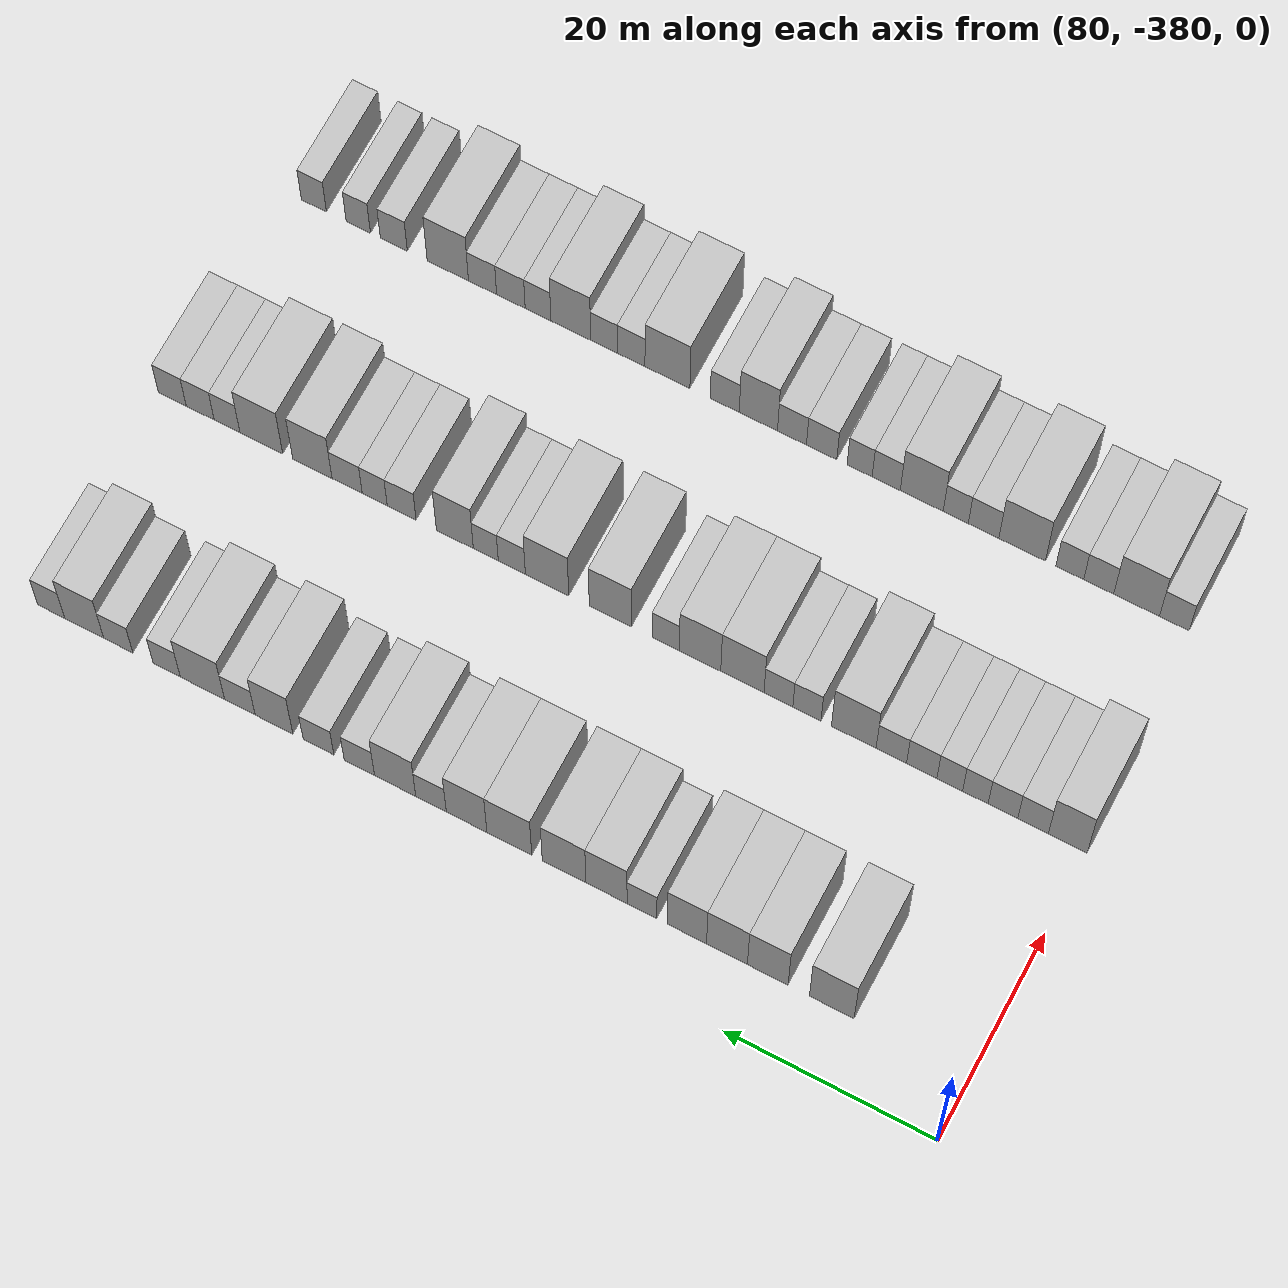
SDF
<sdf version="1.6">
 <world name="default">
  <model name="building_569">
   <static>1</static>
   <pose>91.0000 -367.0969 0 0.000000 0.000000 0.000000</pose>
   <link name="link">
    <pose>0 0 4.50 0 0 0</pose>
    <collision name="collision"><geometry><box><size>10.0000 4.1694 9.0000</size></box></geometry></collision>
    <visual name="visual">
     <cast_shadows>0</cast_shadows>
     <geometry><box><size>10.0000 4.1694 9.0000</size></box></geometry>
     <material>
      <script>
       <uri>model://HANNAS_wall/materials/scripts</uri>
       <uri>model://HANNAS_wall/materials/textures</uri>
       <name>vrc/HANNAS_wall</name>
      </script>
     </material>
    </visual>
   </link>
  </model>
  <model name="building_570">
   <static>1</static>
   <pose>91.0000 -361.1070 0 0.000000 0.000000 0.000000</pose>
   <link name="link">
    <pose>0 0 4.50 0 0 0</pose>
    <collision name="collision"><geometry><box><size>10.0000 3.8105 9.0000</size></box></geometry></collision>
    <visual name="visual">
     <cast_shadows>0</cast_shadows>
     <geometry><box><size>10.0000 3.8105 9.0000</size></box></geometry>
     <material>
      <script>
       <uri>model://HANNAS_wall/materials/scripts</uri>
       <uri>model://HANNAS_wall/materials/textures</uri>
       <name>vrc/HANNAS_wall</name>
      </script>
     </material>
    </visual>
   </link>
  </model>
  <model name="building_571">
   <static>1</static>
   <pose>91.0000 -357.2801 0 0.000000 0.000000 0.000000</pose>
   <link name="link">
    <pose>0 0 4.50 0 0 0</pose>
    <collision name="collision"><geometry><box><size>10.0000 3.8433 9.0000</size></box></geometry></collision>
    <visual name="visual">
     <cast_shadows>0</cast_shadows>
     <geometry><box><size>10.0000 3.8433 9.0000</size></box></geometry>
     <material>
      <script>
       <uri>model://HANNAS_wall/materials/scripts</uri>
       <uri>model://HANNAS_wall/materials/textures</uri>
       <name>vrc/HANNAS_wall</name>
      </script>
     </material>
    </visual>
   </link>
  </model>
  <model name="building_572">
   <static>1</static>
   <pose>91.0000 -353.5101 0 0.000000 0.000000 0.000000</pose>
   <link name="link">
    <pose>0 0 4.50 0 0 0</pose>
    <collision name="collision"><geometry><box><size>10.0000 3.6966 9.0000</size></box></geometry></collision>
    <visual name="visual">
     <cast_shadows>0</cast_shadows>
     <geometry><box><size>10.0000 3.6966 9.0000</size></box></geometry>
     <material>
      <script>
       <uri>model://HANNAS_wall/materials/scripts</uri>
       <uri>model://HANNAS_wall/materials/textures</uri>
       <name>vrc/HANNAS_wall</name>
      </script>
     </material>
    </visual>
   </link>
  </model>
  <model name="building_573">
   <static>1</static>
   <pose>91.0000 -349.2565 0 0.000000 0.000000 0.000000</pose>
   <link name="link">
    <pose>0 0 3.00 0 0 0</pose>
    <collision name="collision"><geometry><box><size>10.0000 2.8105 6.0000</size></box></geometry></collision>
    <visual name="visual">
     <cast_shadows>0</cast_shadows>
     <geometry><box><size>10.0000 2.8105 6.0000</size></box></geometry>
     <material>
      <script>
       <uri>model://HANNAS_wall/materials/scripts</uri>
       <uri>model://HANNAS_wall/materials/textures</uri>
       <name>vrc/HANNAS_wall</name>
      </script>
     </material>
    </visual>
   </link>
  </model>
  <model name="building_574">
   <static>1</static>
   <pose>91.0000 -345.8976 0 0.000000 0.000000 0.000000</pose>
   <link name="link">
    <pose>0 0 4.50 0 0 0</pose>
    <collision name="collision"><geometry><box><size>10.0000 3.9073 9.0000</size></box></geometry></collision>
    <visual name="visual">
     <cast_shadows>0</cast_shadows>
     <geometry><box><size>10.0000 3.9073 9.0000</size></box></geometry>
     <material>
      <script>
       <uri>model://HANNAS_wall/materials/scripts</uri>
       <uri>model://HANNAS_wall/materials/textures</uri>
       <name>vrc/HANNAS_wall</name>
      </script>
     </material>
    </visual>
   </link>
  </model>
  <model name="building_575">
   <static>1</static>
   <pose>91.0000 -341.8642 0 0.000000 0.000000 0.000000</pose>
   <link name="link">
    <pose>0 0 4.50 0 0 0</pose>
    <collision name="collision"><geometry><box><size>10.0000 4.1595 9.0000</size></box></geometry></collision>
    <visual name="visual">
     <cast_shadows>0</cast_shadows>
     <geometry><box><size>10.0000 4.1595 9.0000</size></box></geometry>
     <material>
      <script>
       <uri>model://HANNAS_wall/materials/scripts</uri>
       <uri>model://HANNAS_wall/materials/textures</uri>
       <name>vrc/HANNAS_wall</name>
      </script>
     </material>
    </visual>
   </link>
  </model>
  <model name="building_576">
   <static>1</static>
   <pose>91.0000 -336.6353 0 0.000000 0.000000 0.000000</pose>
   <link name="link">
    <pose>0 0 4.50 0 0 0</pose>
    <collision name="collision"><geometry><box><size>10.0000 4.2985 9.0000</size></box></geometry></collision>
    <visual name="visual">
     <cast_shadows>0</cast_shadows>
     <geometry><box><size>10.0000 4.2985 9.0000</size></box></geometry>
     <material>
      <script>
       <uri>model://HANNAS_wall/materials/scripts</uri>
       <uri>model://HANNAS_wall/materials/textures</uri>
       <name>vrc/HANNAS_wall</name>
      </script>
     </material>
    </visual>
   </link>
  </model>
  <model name="building_577">
   <static>1</static>
   <pose>91.0000 -332.5412 0 0.000000 0.000000 0.000000</pose>
   <link name="link">
    <pose>0 0 4.50 0 0 0</pose>
    <collision name="collision"><geometry><box><size>10.0000 3.8897 9.0000</size></box></geometry></collision>
    <visual name="visual">
     <cast_shadows>0</cast_shadows>
     <geometry><box><size>10.0000 3.8897 9.0000</size></box></geometry>
     <material>
      <script>
       <uri>model://HANNAS_wall/materials/scripts</uri>
       <uri>model://HANNAS_wall/materials/textures</uri>
       <name>vrc/HANNAS_wall</name>
      </script>
     </material>
    </visual>
   </link>
  </model>
  <model name="building_578">
   <static>1</static>
   <pose>91.0000 -329.1259 0 0.000000 0.000000 0.000000</pose>
   <link name="link">
    <pose>0 0 3.00 0 0 0</pose>
    <collision name="collision"><geometry><box><size>10.0000 2.9410 6.0000</size></box></geometry></collision>
    <visual name="visual">
     <cast_shadows>0</cast_shadows>
     <geometry><box><size>10.0000 2.9410 6.0000</size></box></geometry>
     <material>
      <script>
       <uri>model://HANNAS_wall/materials/scripts</uri>
       <uri>model://HANNAS_wall/materials/textures</uri>
       <name>vrc/HANNAS_wall</name>
      </script>
     </material>
    </visual>
   </link>
  </model>
  <model name="building_579">
   <static>1</static>
   <pose>91.0000 -325.6616 0 0.000000 0.000000 0.000000</pose>
   <link name="link">
    <pose>0 0 4.50 0 0 0</pose>
    <collision name="collision"><geometry><box><size>10.0000 3.9875 9.0000</size></box></geometry></collision>
    <visual name="visual">
     <cast_shadows>0</cast_shadows>
     <geometry><box><size>10.0000 3.9875 9.0000</size></box></geometry>
     <material>
      <script>
       <uri>model://HANNAS_wall/materials/scripts</uri>
       <uri>model://HANNAS_wall/materials/textures</uri>
       <name>vrc/HANNAS_wall</name>
      </script>
     </material>
    </visual>
   </link>
  </model>
  <model name="building_580">
   <static>1</static>
   <pose>91.0000 -322.2010 0 0.000000 0.000000 0.000000</pose>
   <link name="link">
    <pose>0 0 3.00 0 0 0</pose>
    <collision name="collision"><geometry><box><size>10.0000 2.9337 6.0000</size></box></geometry></collision>
    <visual name="visual">
     <cast_shadows>0</cast_shadows>
     <geometry><box><size>10.0000 2.9337 6.0000</size></box></geometry>
     <material>
      <script>
       <uri>model://HANNAS_wall/materials/scripts</uri>
       <uri>model://HANNAS_wall/materials/textures</uri>
       <name>vrc/HANNAS_wall</name>
      </script>
     </material>
    </visual>
   </link>
  </model>
  <model name="building_581">
   <static>1</static>
   <pose>91.0000 -318.2426 0 0.000000 0.000000 0.000000</pose>
   <link name="link">
    <pose>0 0 3.00 0 0 0</pose>
    <collision name="collision"><geometry><box><size>10.0000 2.9831 6.0000</size></box></geometry></collision>
    <visual name="visual">
     <cast_shadows>0</cast_shadows>
     <geometry><box><size>10.0000 2.9831 6.0000</size></box></geometry>
     <material>
      <script>
       <uri>model://HANNAS_wall/materials/scripts</uri>
       <uri>model://HANNAS_wall/materials/textures</uri>
       <name>vrc/HANNAS_wall</name>
      </script>
     </material>
    </visual>
   </link>
  </model>
  <model name="building_582">
   <static>1</static>
   <pose>91.0000 -313.9109 0 0.000000 0.000000 0.000000</pose>
   <link name="link">
    <pose>0 0 4.50 0 0 0</pose>
    <collision name="collision"><geometry><box><size>10.0000 3.6802 9.0000</size></box></geometry></collision>
    <visual name="visual">
     <cast_shadows>0</cast_shadows>
     <geometry><box><size>10.0000 3.6802 9.0000</size></box></geometry>
     <material>
      <script>
       <uri>model://HANNAS_wall/materials/scripts</uri>
       <uri>model://HANNAS_wall/materials/textures</uri>
       <name>vrc/HANNAS_wall</name>
      </script>
     </material>
    </visual>
   </link>
  </model>
  <model name="building_583">
   <static>1</static>
   <pose>91.0000 -310.5737 0 0.000000 0.000000 0.000000</pose>
   <link name="link">
    <pose>0 0 3.00 0 0 0</pose>
    <collision name="collision"><geometry><box><size>10.0000 2.9942 6.0000</size></box></geometry></collision>
    <visual name="visual">
     <cast_shadows>0</cast_shadows>
     <geometry><box><size>10.0000 2.9942 6.0000</size></box></geometry>
     <material>
      <script>
       <uri>model://HANNAS_wall/materials/scripts</uri>
       <uri>model://HANNAS_wall/materials/textures</uri>
       <name>vrc/HANNAS_wall</name>
      </script>
     </material>
    </visual>
   </link>
  </model>
  <model name="building_584">
   <static>1</static>
   <pose>91.0000 -306.9051 0 0.000000 0.000000 0.000000</pose>
   <link name="link">
    <pose>0 0 4.50 0 0 0</pose>
    <collision name="collision"><geometry><box><size>10.0000 4.3431 9.0000</size></box></geometry></collision>
    <visual name="visual">
     <cast_shadows>0</cast_shadows>
     <geometry><box><size>10.0000 4.3431 9.0000</size></box></geometry>
     <material>
      <script>
       <uri>model://HANNAS_wall/materials/scripts</uri>
       <uri>model://HANNAS_wall/materials/textures</uri>
       <name>vrc/HANNAS_wall</name>
      </script>
     </material>
    </visual>
   </link>
  </model>
  <model name="building_585">
   <static>1</static>
   <pose>91.0000 -303.3999 0 0.000000 0.000000 0.000000</pose>
   <link name="link">
    <pose>0 0 3.00 0 0 0</pose>
    <collision name="collision"><geometry><box><size>10.0000 2.6673 6.0000</size></box></geometry></collision>
    <visual name="visual">
     <cast_shadows>0</cast_shadows>
     <geometry><box><size>10.0000 2.6673 6.0000</size></box></geometry>
     <material>
      <script>
       <uri>model://HANNAS_wall/materials/scripts</uri>
       <uri>model://HANNAS_wall/materials/textures</uri>
       <name>vrc/HANNAS_wall</name>
      </script>
     </material>
    </visual>
   </link>
  </model>
  <model name="building_586">
   <static>1</static>
   <pose>91.0000 -298.6245 0 0.000000 0.000000 0.000000</pose>
   <link name="link">
    <pose>0 0 3.00 0 0 0</pose>
    <collision name="collision"><geometry><box><size>10.0000 2.8835 6.0000</size></box></geometry></collision>
    <visual name="visual">
     <cast_shadows>0</cast_shadows>
     <geometry><box><size>10.0000 2.8835 6.0000</size></box></geometry>
     <material>
      <script>
       <uri>model://HANNAS_wall/materials/scripts</uri>
       <uri>model://HANNAS_wall/materials/textures</uri>
       <name>vrc/HANNAS_wall</name>
      </script>
     </material>
    </visual>
   </link>
  </model>
  <model name="building_587">
   <static>1</static>
   <pose>91.0000 -295.2579 0 0.000000 0.000000 0.000000</pose>
   <link name="link">
    <pose>0 0 4.50 0 0 0</pose>
    <collision name="collision"><geometry><box><size>10.0000 3.8496 9.0000</size></box></geometry></collision>
    <visual name="visual">
     <cast_shadows>0</cast_shadows>
     <geometry><box><size>10.0000 3.8496 9.0000</size></box></geometry>
     <material>
      <script>
       <uri>model://HANNAS_wall/materials/scripts</uri>
       <uri>model://HANNAS_wall/materials/textures</uri>
       <name>vrc/HANNAS_wall</name>
      </script>
     </material>
    </visual>
   </link>
  </model>
  <model name="building_588">
   <static>1</static>
   <pose>91.0000 -291.9937 0 0.000000 0.000000 0.000000</pose>
   <link name="link">
    <pose>0 0 3.00 0 0 0</pose>
    <collision name="collision"><geometry><box><size>10.0000 2.6790 6.0000</size></box></geometry></collision>
    <visual name="visual">
     <cast_shadows>0</cast_shadows>
     <geometry><box><size>10.0000 2.6790 6.0000</size></box></geometry>
     <material>
      <script>
       <uri>model://HANNAS_wall/materials/scripts</uri>
       <uri>model://HANNAS_wall/materials/textures</uri>
       <name>vrc/HANNAS_wall</name>
      </script>
     </material>
    </visual>
   </link>
  </model>
  <model name="building_748">
   <static>1</static>
   <pose>113.0000 -378.1793 0 0.000000 0.000000 0.000000</pose>
   <link name="link">
    <pose>0 0 4.50 0 0 0</pose>
    <collision name="collision"><geometry><box><size>10.0000 3.6413 9.0000</size></box></geometry></collision>
    <visual name="visual">
     <cast_shadows>0</cast_shadows>
     <geometry><box><size>10.0000 3.6413 9.0000</size></box></geometry>
     <material>
      <script>
       <uri>model://HANNAS_wall/materials/scripts</uri>
       <uri>model://HANNAS_wall/materials/textures</uri>
       <name>vrc/HANNAS_wall</name>
      </script>
     </material>
    </visual>
   </link>
  </model>
  <model name="building_749">
   <static>1</static>
   <pose>113.0000 -374.9219 0 0.000000 0.000000 0.000000</pose>
   <link name="link">
    <pose>0 0 3.00 0 0 0</pose>
    <collision name="collision"><geometry><box><size>10.0000 2.8735 6.0000</size></box></geometry></collision>
    <visual name="visual">
     <cast_shadows>0</cast_shadows>
     <geometry><box><size>10.0000 2.8735 6.0000</size></box></geometry>
     <material>
      <script>
       <uri>model://HANNAS_wall/materials/scripts</uri>
       <uri>model://HANNAS_wall/materials/textures</uri>
       <name>vrc/HANNAS_wall</name>
      </script>
     </material>
    </visual>
   </link>
  </model>
  <model name="building_750">
   <static>1</static>
   <pose>113.0000 -372.0901 0 0.000000 0.000000 0.000000</pose>
   <link name="link">
    <pose>0 0 3.00 0 0 0</pose>
    <collision name="collision"><geometry><box><size>10.0000 2.7900 6.0000</size></box></geometry></collision>
    <visual name="visual">
     <cast_shadows>0</cast_shadows>
     <geometry><box><size>10.0000 2.7900 6.0000</size></box></geometry>
     <material>
      <script>
       <uri>model://HANNAS_wall/materials/scripts</uri>
       <uri>model://HANNAS_wall/materials/textures</uri>
       <name>vrc/HANNAS_wall</name>
      </script>
     </material>
    </visual>
   </link>
  </model>
  <model name="building_751">
   <static>1</static>
   <pose>113.0000 -369.4898 0 0.000000 0.000000 0.000000</pose>
   <link name="link">
    <pose>0 0 3.00 0 0 0</pose>
    <collision name="collision"><geometry><box><size>10.0000 2.4107 6.0000</size></box></geometry></collision>
    <visual name="visual">
     <cast_shadows>0</cast_shadows>
     <geometry><box><size>10.0000 2.4107 6.0000</size></box></geometry>
     <material>
      <script>
       <uri>model://HANNAS_wall/materials/scripts</uri>
       <uri>model://HANNAS_wall/materials/textures</uri>
       <name>vrc/HANNAS_wall</name>
      </script>
     </material>
    </visual>
   </link>
  </model>
  <model name="building_752">
   <static>1</static>
   <pose>113.0000 -367.0705 0 0.000000 0.000000 0.000000</pose>
   <link name="link">
    <pose>0 0 3.00 0 0 0</pose>
    <collision name="collision"><geometry><box><size>10.0000 2.4279 6.0000</size></box></geometry></collision>
    <visual name="visual">
     <cast_shadows>0</cast_shadows>
     <geometry><box><size>10.0000 2.4279 6.0000</size></box></geometry>
     <material>
      <script>
       <uri>model://HANNAS_wall/materials/scripts</uri>
       <uri>model://HANNAS_wall/materials/textures</uri>
       <name>vrc/HANNAS_wall</name>
      </script>
     </material>
    </visual>
   </link>
  </model>
  <model name="building_753">
   <static>1</static>
   <pose>113.0000 -364.4181 0 0.000000 0.000000 0.000000</pose>
   <link name="link">
    <pose>0 0 3.00 0 0 0</pose>
    <collision name="collision"><geometry><box><size>10.0000 2.8770 6.0000</size></box></geometry></collision>
    <visual name="visual">
     <cast_shadows>0</cast_shadows>
     <geometry><box><size>10.0000 2.8770 6.0000</size></box></geometry>
     <material>
      <script>
       <uri>model://HANNAS_wall/materials/scripts</uri>
       <uri>model://HANNAS_wall/materials/textures</uri>
       <name>vrc/HANNAS_wall</name>
      </script>
     </material>
    </visual>
   </link>
  </model>
  <model name="building_754">
   <static>1</static>
   <pose>113.0000 -361.5354 0 0.000000 0.000000 0.000000</pose>
   <link name="link">
    <pose>0 0 3.00 0 0 0</pose>
    <collision name="collision"><geometry><box><size>10.0000 2.8883 6.0000</size></box></geometry></collision>
    <visual name="visual">
     <cast_shadows>0</cast_shadows>
     <geometry><box><size>10.0000 2.8883 6.0000</size></box></geometry>
     <material>
      <script>
       <uri>model://HANNAS_wall/materials/scripts</uri>
       <uri>model://HANNAS_wall/materials/textures</uri>
       <name>vrc/HANNAS_wall</name>
      </script>
     </material>
    </visual>
   </link>
  </model>
  <model name="building_755">
   <static>1</static>
   <pose>113.0000 -357.9671 0 0.000000 0.000000 0.000000</pose>
   <link name="link">
    <pose>0 0 4.50 0 0 0</pose>
    <collision name="collision"><geometry><box><size>10.0000 4.2483 9.0000</size></box></geometry></collision>
    <visual name="visual">
     <cast_shadows>0</cast_shadows>
     <geometry><box><size>10.0000 4.2483 9.0000</size></box></geometry>
     <material>
      <script>
       <uri>model://HANNAS_wall/materials/scripts</uri>
       <uri>model://HANNAS_wall/materials/textures</uri>
       <name>vrc/HANNAS_wall</name>
      </script>
     </material>
    </visual>
   </link>
  </model>
  <model name="building_756">
   <static>1</static>
   <pose>113.0000 -353.4993 0 0.000000 0.000000 0.000000</pose>
   <link name="link">
    <pose>0 0 3.00 0 0 0</pose>
    <collision name="collision"><geometry><box><size>10.0000 2.6874 6.0000</size></box></geometry></collision>
    <visual name="visual">
     <cast_shadows>0</cast_shadows>
     <geometry><box><size>10.0000 2.6874 6.0000</size></box></geometry>
     <material>
      <script>
       <uri>model://HANNAS_wall/materials/scripts</uri>
       <uri>model://HANNAS_wall/materials/textures</uri>
       <name>vrc/HANNAS_wall</name>
      </script>
     </material>
    </visual>
   </link>
  </model>
  <model name="building_757">
   <static>1</static>
   <pose>113.0000 -350.7759 0 0.000000 0.000000 0.000000</pose>
   <link name="link">
    <pose>0 0 3.00 0 0 0</pose>
    <collision name="collision"><geometry><box><size>10.0000 2.7592 6.0000</size></box></geometry></collision>
    <visual name="visual">
     <cast_shadows>0</cast_shadows>
     <geometry><box><size>10.0000 2.7592 6.0000</size></box></geometry>
     <material>
      <script>
       <uri>model://HANNAS_wall/materials/scripts</uri>
       <uri>model://HANNAS_wall/materials/textures</uri>
       <name>vrc/HANNAS_wall</name>
      </script>
     </material>
    </visual>
   </link>
  </model>
  <model name="building_758">
   <static>1</static>
   <pose>113.0000 -347.3155 0 0.000000 0.000000 0.000000</pose>
   <link name="link">
    <pose>0 0 4.50 0 0 0</pose>
    <collision name="collision"><geometry><box><size>10.0000 4.1616 9.0000</size></box></geometry></collision>
    <visual name="visual">
     <cast_shadows>0</cast_shadows>
     <geometry><box><size>10.0000 4.1616 9.0000</size></box></geometry>
     <material>
      <script>
       <uri>model://HANNAS_wall/materials/scripts</uri>
       <uri>model://HANNAS_wall/materials/textures</uri>
       <name>vrc/HANNAS_wall</name>
      </script>
     </material>
    </visual>
   </link>
  </model>
  <model name="building_759">
   <static>1</static>
   <pose>113.0000 -343.2371 0 0.000000 0.000000 0.000000</pose>
   <link name="link">
    <pose>0 0 4.50 0 0 0</pose>
    <collision name="collision"><geometry><box><size>10.0000 3.9953 9.0000</size></box></geometry></collision>
    <visual name="visual">
     <cast_shadows>0</cast_shadows>
     <geometry><box><size>10.0000 3.9953 9.0000</size></box></geometry>
     <material>
      <script>
       <uri>model://HANNAS_wall/materials/scripts</uri>
       <uri>model://HANNAS_wall/materials/textures</uri>
       <name>vrc/HANNAS_wall</name>
      </script>
     </material>
    </visual>
   </link>
  </model>
  <model name="building_760">
   <static>1</static>
   <pose>113.0000 -339.9262 0 0.000000 0.000000 0.000000</pose>
   <link name="link">
    <pose>0 0 3.00 0 0 0</pose>
    <collision name="collision"><geometry><box><size>10.0000 2.6266 6.0000</size></box></geometry></collision>
    <visual name="visual">
     <cast_shadows>0</cast_shadows>
     <geometry><box><size>10.0000 2.6266 6.0000</size></box></geometry>
     <material>
      <script>
       <uri>model://HANNAS_wall/materials/scripts</uri>
       <uri>model://HANNAS_wall/materials/textures</uri>
       <name>vrc/HANNAS_wall</name>
      </script>
     </material>
    </visual>
   </link>
  </model>
  <model name="building_761">
   <static>1</static>
   <pose>113.0000 -334.5702 0 0.000000 0.000000 0.000000</pose>
   <link name="link">
    <pose>0 0 4.50 0 0 0</pose>
    <collision name="collision"><geometry><box><size>10.0000 4.0854 9.0000</size></box></geometry></collision>
    <visual name="visual">
     <cast_shadows>0</cast_shadows>
     <geometry><box><size>10.0000 4.0854 9.0000</size></box></geometry>
     <material>
      <script>
       <uri>model://HANNAS_wall/materials/scripts</uri>
       <uri>model://HANNAS_wall/materials/textures</uri>
       <name>vrc/HANNAS_wall</name>
      </script>
     </material>
    </visual>
   </link>
  </model>
  <model name="building_762">
   <static>1</static>
   <pose>113.0000 -328.4129 0 0.000000 0.000000 0.000000</pose>
   <link name="link">
    <pose>0 0 4.50 0 0 0</pose>
    <collision name="collision"><geometry><box><size>10.0000 4.2292 9.0000</size></box></geometry></collision>
    <visual name="visual">
     <cast_shadows>0</cast_shadows>
     <geometry><box><size>10.0000 4.2292 9.0000</size></box></geometry>
     <material>
      <script>
       <uri>model://HANNAS_wall/materials/scripts</uri>
       <uri>model://HANNAS_wall/materials/textures</uri>
       <name>vrc/HANNAS_wall</name>
      </script>
     </material>
    </visual>
   </link>
  </model>
  <model name="building_763">
   <static>1</static>
   <pose>113.0000 -324.9726 0 0.000000 0.000000 0.000000</pose>
   <link name="link">
    <pose>0 0 3.00 0 0 0</pose>
    <collision name="collision"><geometry><box><size>10.0000 2.6514 6.0000</size></box></geometry></collision>
    <visual name="visual">
     <cast_shadows>0</cast_shadows>
     <geometry><box><size>10.0000 2.6514 6.0000</size></box></geometry>
     <material>
      <script>
       <uri>model://HANNAS_wall/materials/scripts</uri>
       <uri>model://HANNAS_wall/materials/textures</uri>
       <name>vrc/HANNAS_wall</name>
      </script>
     </material>
    </visual>
   </link>
  </model>
  <model name="building_764">
   <static>1</static>
   <pose>113.0000 -322.4252 0 0.000000 0.000000 0.000000</pose>
   <link name="link">
    <pose>0 0 3.00 0 0 0</pose>
    <collision name="collision"><geometry><box><size>10.0000 2.4434 6.0000</size></box></geometry></collision>
    <visual name="visual">
     <cast_shadows>0</cast_shadows>
     <geometry><box><size>10.0000 2.4434 6.0000</size></box></geometry>
     <material>
      <script>
       <uri>model://HANNAS_wall/materials/scripts</uri>
       <uri>model://HANNAS_wall/materials/textures</uri>
       <name>vrc/HANNAS_wall</name>
      </script>
     </material>
    </visual>
   </link>
  </model>
  <model name="building_765">
   <static>1</static>
   <pose>113.0000 -319.3925 0 0.000000 0.000000 0.000000</pose>
   <link name="link">
    <pose>0 0 4.50 0 0 0</pose>
    <collision name="collision"><geometry><box><size>10.0000 3.6220 9.0000</size></box></geometry></collision>
    <visual name="visual">
     <cast_shadows>0</cast_shadows>
     <geometry><box><size>10.0000 3.6220 9.0000</size></box></geometry>
     <material>
      <script>
       <uri>model://HANNAS_wall/materials/scripts</uri>
       <uri>model://HANNAS_wall/materials/textures</uri>
       <name>vrc/HANNAS_wall</name>
      </script>
     </material>
    </visual>
   </link>
  </model>
  <model name="building_766">
   <static>1</static>
   <pose>113.0000 -314.1592 0 0.000000 0.000000 0.000000</pose>
   <link name="link">
    <pose>0 0 3.00 0 0 0</pose>
    <collision name="collision"><geometry><box><size>10.0000 2.8445 6.0000</size></box></geometry></collision>
    <visual name="visual">
     <cast_shadows>0</cast_shadows>
     <geometry><box><size>10.0000 2.8445 6.0000</size></box></geometry>
     <material>
      <script>
       <uri>model://HANNAS_wall/materials/scripts</uri>
       <uri>model://HANNAS_wall/materials/textures</uri>
       <name>vrc/HANNAS_wall</name>
      </script>
     </material>
    </visual>
   </link>
  </model>
  <model name="building_767">
   <static>1</static>
   <pose>113.0000 -311.4996 0 0.000000 0.000000 0.000000</pose>
   <link name="link">
    <pose>0 0 3.00 0 0 0</pose>
    <collision name="collision"><geometry><box><size>10.0000 2.4747 6.0000</size></box></geometry></collision>
    <visual name="visual">
     <cast_shadows>0</cast_shadows>
     <geometry><box><size>10.0000 2.4747 6.0000</size></box></geometry>
     <material>
      <script>
       <uri>model://HANNAS_wall/materials/scripts</uri>
       <uri>model://HANNAS_wall/materials/textures</uri>
       <name>vrc/HANNAS_wall</name>
      </script>
     </material>
    </visual>
   </link>
  </model>
  <model name="building_768">
   <static>1</static>
   <pose>113.0000 -308.7665 0 0.000000 0.000000 0.000000</pose>
   <link name="link">
    <pose>0 0 3.00 0 0 0</pose>
    <collision name="collision"><geometry><box><size>10.0000 2.9915 6.0000</size></box></geometry></collision>
    <visual name="visual">
     <cast_shadows>0</cast_shadows>
     <geometry><box><size>10.0000 2.9915 6.0000</size></box></geometry>
     <material>
      <script>
       <uri>model://HANNAS_wall/materials/scripts</uri>
       <uri>model://HANNAS_wall/materials/textures</uri>
       <name>vrc/HANNAS_wall</name>
      </script>
     </material>
    </visual>
   </link>
  </model>
  <model name="building_769">
   <static>1</static>
   <pose>113.0000 -305.3181 0 0.000000 0.000000 0.000000</pose>
   <link name="link">
    <pose>0 0 4.50 0 0 0</pose>
    <collision name="collision"><geometry><box><size>10.0000 3.9053 9.0000</size></box></geometry></collision>
    <visual name="visual">
     <cast_shadows>0</cast_shadows>
     <geometry><box><size>10.0000 3.9053 9.0000</size></box></geometry>
     <material>
      <script>
       <uri>model://HANNAS_wall/materials/scripts</uri>
       <uri>model://HANNAS_wall/materials/textures</uri>
       <name>vrc/HANNAS_wall</name>
      </script>
     </material>
    </visual>
   </link>
  </model>
  <model name="building_770">
   <static>1</static>
   <pose>113.0000 -300.2298 0 0.000000 0.000000 0.000000</pose>
   <link name="link">
    <pose>0 0 4.50 0 0 0</pose>
    <collision name="collision"><geometry><box><size>10.0000 4.2712 9.0000</size></box></geometry></collision>
    <visual name="visual">
     <cast_shadows>0</cast_shadows>
     <geometry><box><size>10.0000 4.2712 9.0000</size></box></geometry>
     <material>
      <script>
       <uri>model://HANNAS_wall/materials/scripts</uri>
       <uri>model://HANNAS_wall/materials/textures</uri>
       <name>vrc/HANNAS_wall</name>
      </script>
     </material>
    </visual>
   </link>
  </model>
  <model name="building_771">
   <static>1</static>
   <pose>113.0000 -296.8049 0 0.000000 0.000000 0.000000</pose>
   <link name="link">
    <pose>0 0 3.00 0 0 0</pose>
    <collision name="collision"><geometry><box><size>10.0000 2.5785 6.0000</size></box></geometry></collision>
    <visual name="visual">
     <cast_shadows>0</cast_shadows>
     <geometry><box><size>10.0000 2.5785 6.0000</size></box></geometry>
     <material>
      <script>
       <uri>model://HANNAS_wall/materials/scripts</uri>
       <uri>model://HANNAS_wall/materials/textures</uri>
       <name>vrc/HANNAS_wall</name>
      </script>
     </material>
    </visual>
   </link>
  </model>
  <model name="building_772">
   <static>1</static>
   <pose>113.0000 -294.1156 0 0.000000 0.000000 0.000000</pose>
   <link name="link">
    <pose>0 0 3.00 0 0 0</pose>
    <collision name="collision"><geometry><box><size>10.0000 2.8002 6.0000</size></box></geometry></collision>
    <visual name="visual">
     <cast_shadows>0</cast_shadows>
     <geometry><box><size>10.0000 2.8002 6.0000</size></box></geometry>
     <material>
      <script>
       <uri>model://HANNAS_wall/materials/scripts</uri>
       <uri>model://HANNAS_wall/materials/textures</uri>
       <name>vrc/HANNAS_wall</name>
      </script>
     </material>
    </visual>
   </link>
  </model>
  <model name="building_773">
   <static>1</static>
   <pose>113.0000 -291.3076 0 0.000000 0.000000 0.000000</pose>
   <link name="link">
    <pose>0 0 3.00 0 0 0</pose>
    <collision name="collision"><geometry><box><size>10.0000 2.8159 6.0000</size></box></geometry></collision>
    <visual name="visual">
     <cast_shadows>0</cast_shadows>
     <geometry><box><size>10.0000 2.8159 6.0000</size></box></geometry>
     <material>
      <script>
       <uri>model://HANNAS_wall/materials/scripts</uri>
       <uri>model://HANNAS_wall/materials/textures</uri>
       <name>vrc/HANNAS_wall</name>
      </script>
     </material>
    </visual>
   </link>
  </model>
  <model name="building_944">
   <static>1</static>
   <pose>135.0000 -377.5845 0 0.000000 0.000000 0.000000</pose>
   <link name="link">
    <pose>0 0 3.00 0 0 0</pose>
    <collision name="collision"><geometry><box><size>10.0000 2.8309 6.0000</size></box></geometry></collision>
    <visual name="visual">
     <cast_shadows>0</cast_shadows>
     <geometry><box><size>10.0000 2.8309 6.0000</size></box></geometry>
     <material>
      <script>
       <uri>model://HANNAS_wall/materials/scripts</uri>
       <uri>model://HANNAS_wall/materials/textures</uri>
       <name>vrc/HANNAS_wall</name>
      </script>
     </material>
    </visual>
   </link>
  </model>
  <model name="building_945">
   <static>1</static>
   <pose>135.0000 -373.9913 0 0.000000 0.000000 0.000000</pose>
   <link name="link">
    <pose>0 0 4.50 0 0 0</pose>
    <collision name="collision"><geometry><box><size>10.0000 4.3555 9.0000</size></box></geometry></collision>
    <visual name="visual">
     <cast_shadows>0</cast_shadows>
     <geometry><box><size>10.0000 4.3555 9.0000</size></box></geometry>
     <material>
      <script>
       <uri>model://HANNAS_wall/materials/scripts</uri>
       <uri>model://HANNAS_wall/materials/textures</uri>
       <name>vrc/HANNAS_wall</name>
      </script>
     </material>
    </visual>
   </link>
  </model>
  <model name="building_946">
   <static>1</static>
   <pose>135.0000 -370.3814 0 0.000000 0.000000 0.000000</pose>
   <link name="link">
    <pose>0 0 3.00 0 0 0</pose>
    <collision name="collision"><geometry><box><size>10.0000 2.8643 6.0000</size></box></geometry></collision>
    <visual name="visual">
     <cast_shadows>0</cast_shadows>
     <geometry><box><size>10.0000 2.8643 6.0000</size></box></geometry>
     <material>
      <script>
       <uri>model://HANNAS_wall/materials/scripts</uri>
       <uri>model://HANNAS_wall/materials/textures</uri>
       <name>vrc/HANNAS_wall</name>
      </script>
     </material>
    </visual>
   </link>
  </model>
  <model name="building_947">
   <static>1</static>
   <pose>135.0000 -367.6221 0 0.000000 0.000000 0.000000</pose>
   <link name="link">
    <pose>0 0 3.00 0 0 0</pose>
    <collision name="collision"><geometry><box><size>10.0000 2.6543 6.0000</size></box></geometry></collision>
    <visual name="visual">
     <cast_shadows>0</cast_shadows>
     <geometry><box><size>10.0000 2.6543 6.0000</size></box></geometry>
     <material>
      <script>
       <uri>model://HANNAS_wall/materials/scripts</uri>
       <uri>model://HANNAS_wall/materials/textures</uri>
       <name>vrc/HANNAS_wall</name>
      </script>
     </material>
    </visual>
   </link>
  </model>
  <model name="building_948">
   <static>1</static>
   <pose>135.0000 -363.0604 0 0.000000 0.000000 0.000000</pose>
   <link name="link">
    <pose>0 0 4.50 0 0 0</pose>
    <collision name="collision"><geometry><box><size>10.0000 4.4692 9.0000</size></box></geometry></collision>
    <visual name="visual">
     <cast_shadows>0</cast_shadows>
     <geometry><box><size>10.0000 4.4692 9.0000</size></box></geometry>
     <material>
      <script>
       <uri>model://HANNAS_wall/materials/scripts</uri>
       <uri>model://HANNAS_wall/materials/textures</uri>
       <name>vrc/HANNAS_wall</name>
      </script>
     </material>
    </visual>
   </link>
  </model>
  <model name="building_949">
   <static>1</static>
   <pose>135.0000 -359.3538 0 0.000000 0.000000 0.000000</pose>
   <link name="link">
    <pose>0 0 3.00 0 0 0</pose>
    <collision name="collision"><geometry><box><size>10.0000 2.9439 6.0000</size></box></geometry></collision>
    <visual name="visual">
     <cast_shadows>0</cast_shadows>
     <geometry><box><size>10.0000 2.9439 6.0000</size></box></geometry>
     <material>
      <script>
       <uri>model://HANNAS_wall/materials/scripts</uri>
       <uri>model://HANNAS_wall/materials/textures</uri>
       <name>vrc/HANNAS_wall</name>
      </script>
     </material>
    </visual>
   </link>
  </model>
  <model name="building_950">
   <static>1</static>
   <pose>135.0000 -356.6701 0 0.000000 0.000000 0.000000</pose>
   <link name="link">
    <pose>0 0 3.00 0 0 0</pose>
    <collision name="collision"><geometry><box><size>10.0000 2.4234 6.0000</size></box></geometry></collision>
    <visual name="visual">
     <cast_shadows>0</cast_shadows>
     <geometry><box><size>10.0000 2.4234 6.0000</size></box></geometry>
     <material>
      <script>
       <uri>model://HANNAS_wall/materials/scripts</uri>
       <uri>model://HANNAS_wall/materials/textures</uri>
       <name>vrc/HANNAS_wall</name>
      </script>
     </material>
    </visual>
   </link>
  </model>
  <model name="building_951">
   <static>1</static>
   <pose>135.0000 -353.3797 0 0.000000 0.000000 0.000000</pose>
   <link name="link">
    <pose>0 0 4.50 0 0 0</pose>
    <collision name="collision"><geometry><box><size>10.0000 4.1574 9.0000</size></box></geometry></collision>
    <visual name="visual">
     <cast_shadows>0</cast_shadows>
     <geometry><box><size>10.0000 4.1574 9.0000</size></box></geometry>
     <material>
      <script>
       <uri>model://HANNAS_wall/materials/scripts</uri>
       <uri>model://HANNAS_wall/materials/textures</uri>
       <name>vrc/HANNAS_wall</name>
      </script>
     </material>
    </visual>
   </link>
  </model>
  <model name="building_952">
   <static>1</static>
   <pose>135.0000 -349.9372 0 0.000000 0.000000 0.000000</pose>
   <link name="link">
    <pose>0 0 3.00 0 0 0</pose>
    <collision name="collision"><geometry><box><size>10.0000 2.7278 6.0000</size></box></geometry></collision>
    <visual name="visual">
     <cast_shadows>0</cast_shadows>
     <geometry><box><size>10.0000 2.7278 6.0000</size></box></geometry>
     <material>
      <script>
       <uri>model://HANNAS_wall/materials/scripts</uri>
       <uri>model://HANNAS_wall/materials/textures</uri>
       <name>vrc/HANNAS_wall</name>
      </script>
     </material>
    </visual>
   </link>
  </model>
  <model name="building_953">
   <static>1</static>
   <pose>135.0000 -347.3542 0 0.000000 0.000000 0.000000</pose>
   <link name="link">
    <pose>0 0 3.00 0 0 0</pose>
    <collision name="collision"><geometry><box><size>10.0000 2.4381 6.0000</size></box></geometry></collision>
    <visual name="visual">
     <cast_shadows>0</cast_shadows>
     <geometry><box><size>10.0000 2.4381 6.0000</size></box></geometry>
     <material>
      <script>
       <uri>model://HANNAS_wall/materials/scripts</uri>
       <uri>model://HANNAS_wall/materials/textures</uri>
       <name>vrc/HANNAS_wall</name>
      </script>
     </material>
    </visual>
   </link>
  </model>
  <model name="building_954">
   <static>1</static>
   <pose>135.0000 -343.6555 0 0.000000 0.000000 0.000000</pose>
   <link name="link">
    <pose>0 0 3.00 0 0 0</pose>
    <collision name="collision"><geometry><box><size>10.0000 2.9593 6.0000</size></box></geometry></collision>
    <visual name="visual">
     <cast_shadows>0</cast_shadows>
     <geometry><box><size>10.0000 2.9593 6.0000</size></box></geometry>
     <material>
      <script>
       <uri>model://HANNAS_wall/materials/scripts</uri>
       <uri>model://HANNAS_wall/materials/textures</uri>
       <name>vrc/HANNAS_wall</name>
      </script>
     </material>
    </visual>
   </link>
  </model>
  <model name="building_955">
   <static>1</static>
   <pose>135.0000 -340.7587 0 0.000000 0.000000 0.000000</pose>
   <link name="link">
    <pose>0 0 3.00 0 0 0</pose>
    <collision name="collision"><geometry><box><size>10.0000 2.8344 6.0000</size></box></geometry></collision>
    <visual name="visual">
     <cast_shadows>0</cast_shadows>
     <geometry><box><size>10.0000 2.8344 6.0000</size></box></geometry>
     <material>
      <script>
       <uri>model://HANNAS_wall/materials/scripts</uri>
       <uri>model://HANNAS_wall/materials/textures</uri>
       <name>vrc/HANNAS_wall</name>
      </script>
     </material>
    </visual>
   </link>
  </model>
  <model name="building_956">
   <static>1</static>
   <pose>135.0000 -337.4659 0 0.000000 0.000000 0.000000</pose>
   <link name="link">
    <pose>0 0 4.50 0 0 0</pose>
    <collision name="collision"><geometry><box><size>10.0000 3.7513 9.0000</size></box></geometry></collision>
    <visual name="visual">
     <cast_shadows>0</cast_shadows>
     <geometry><box><size>10.0000 3.7513 9.0000</size></box></geometry>
     <material>
      <script>
       <uri>model://HANNAS_wall/materials/scripts</uri>
       <uri>model://HANNAS_wall/materials/textures</uri>
       <name>vrc/HANNAS_wall</name>
      </script>
     </material>
    </visual>
   </link>
  </model>
  <model name="building_957">
   <static>1</static>
   <pose>135.0000 -334.1665 0 0.000000 0.000000 0.000000</pose>
   <link name="link">
    <pose>0 0 3.00 0 0 0</pose>
    <collision name="collision"><geometry><box><size>10.0000 2.8475 6.0000</size></box></geometry></collision>
    <visual name="visual">
     <cast_shadows>0</cast_shadows>
     <geometry><box><size>10.0000 2.8475 6.0000</size></box></geometry>
     <material>
      <script>
       <uri>model://HANNAS_wall/materials/scripts</uri>
       <uri>model://HANNAS_wall/materials/textures</uri>
       <name>vrc/HANNAS_wall</name>
      </script>
     </material>
    </visual>
   </link>
  </model>
  <model name="building_958">
   <static>1</static>
   <pose>135.0000 -328.5251 0 0.000000 0.000000 0.000000</pose>
   <link name="link">
    <pose>0 0 4.50 0 0 0</pose>
    <collision name="collision"><geometry><box><size>10.0000 4.4352 9.0000</size></box></geometry></collision>
    <visual name="visual">
     <cast_shadows>0</cast_shadows>
     <geometry><box><size>10.0000 4.4352 9.0000</size></box></geometry>
     <material>
      <script>
       <uri>model://HANNAS_wall/materials/scripts</uri>
       <uri>model://HANNAS_wall/materials/textures</uri>
       <name>vrc/HANNAS_wall</name>
      </script>
     </material>
    </visual>
   </link>
  </model>
  <model name="building_959">
   <static>1</static>
   <pose>135.0000 -324.9406 0 0.000000 0.000000 0.000000</pose>
   <link name="link">
    <pose>0 0 3.00 0 0 0</pose>
    <collision name="collision"><geometry><box><size>10.0000 2.7338 6.0000</size></box></geometry></collision>
    <visual name="visual">
     <cast_shadows>0</cast_shadows>
     <geometry><box><size>10.0000 2.7338 6.0000</size></box></geometry>
     <material>
      <script>
       <uri>model://HANNAS_wall/materials/scripts</uri>
       <uri>model://HANNAS_wall/materials/textures</uri>
       <name>vrc/HANNAS_wall</name>
      </script>
     </material>
    </visual>
   </link>
  </model>
  <model name="building_960">
   <static>1</static>
   <pose>135.0000 -322.2543 0 0.000000 0.000000 0.000000</pose>
   <link name="link">
    <pose>0 0 3.00 0 0 0</pose>
    <collision name="collision"><geometry><box><size>10.0000 2.6387 6.0000</size></box></geometry></collision>
    <visual name="visual">
     <cast_shadows>0</cast_shadows>
     <geometry><box><size>10.0000 2.6387 6.0000</size></box></geometry>
     <material>
      <script>
       <uri>model://HANNAS_wall/materials/scripts</uri>
       <uri>model://HANNAS_wall/materials/textures</uri>
       <name>vrc/HANNAS_wall</name>
      </script>
     </material>
    </visual>
   </link>
  </model>
  <model name="building_961">
   <static>1</static>
   <pose>135.0000 -318.9585 0 0.000000 0.000000 0.000000</pose>
   <link name="link">
    <pose>0 0 4.50 0 0 0</pose>
    <collision name="collision"><geometry><box><size>10.0000 3.9530 9.0000</size></box></geometry></collision>
    <visual name="visual">
     <cast_shadows>0</cast_shadows>
     <geometry><box><size>10.0000 3.9530 9.0000</size></box></geometry>
     <material>
      <script>
       <uri>model://HANNAS_wall/materials/scripts</uri>
       <uri>model://HANNAS_wall/materials/textures</uri>
       <name>vrc/HANNAS_wall</name>
      </script>
     </material>
    </visual>
   </link>
  </model>
  <model name="building_962">
   <static>1</static>
   <pose>135.0000 -315.6952 0 0.000000 0.000000 0.000000</pose>
   <link name="link">
    <pose>0 0 3.00 0 0 0</pose>
    <collision name="collision"><geometry><box><size>10.0000 2.5736 6.0000</size></box></geometry></collision>
    <visual name="visual">
     <cast_shadows>0</cast_shadows>
     <geometry><box><size>10.0000 2.5736 6.0000</size></box></geometry>
     <material>
      <script>
       <uri>model://HANNAS_wall/materials/scripts</uri>
       <uri>model://HANNAS_wall/materials/textures</uri>
       <name>vrc/HANNAS_wall</name>
      </script>
     </material>
    </visual>
   </link>
  </model>
  <model name="building_963">
   <static>1</static>
   <pose>135.0000 -312.9802 0 0.000000 0.000000 0.000000</pose>
   <link name="link">
    <pose>0 0 3.00 0 0 0</pose>
    <collision name="collision"><geometry><box><size>10.0000 2.8564 6.0000</size></box></geometry></collision>
    <visual name="visual">
     <cast_shadows>0</cast_shadows>
     <geometry><box><size>10.0000 2.8564 6.0000</size></box></geometry>
     <material>
      <script>
       <uri>model://HANNAS_wall/materials/scripts</uri>
       <uri>model://HANNAS_wall/materials/textures</uri>
       <name>vrc/HANNAS_wall</name>
      </script>
     </material>
    </visual>
   </link>
  </model>
  <model name="building_964">
   <static>1</static>
   <pose>135.0000 -310.1455 0 0.000000 0.000000 0.000000</pose>
   <link name="link">
    <pose>0 0 3.00 0 0 0</pose>
    <collision name="collision"><geometry><box><size>10.0000 2.8131 6.0000</size></box></geometry></collision>
    <visual name="visual">
     <cast_shadows>0</cast_shadows>
     <geometry><box><size>10.0000 2.8131 6.0000</size></box></geometry>
     <material>
      <script>
       <uri>model://HANNAS_wall/materials/scripts</uri>
       <uri>model://HANNAS_wall/materials/textures</uri>
       <name>vrc/HANNAS_wall</name>
      </script>
     </material>
    </visual>
   </link>
  </model>
  <model name="building_965">
   <static>1</static>
   <pose>135.0000 -306.6659 0 0.000000 0.000000 0.000000</pose>
   <link name="link">
    <pose>0 0 4.50 0 0 0</pose>
    <collision name="collision"><geometry><box><size>10.0000 4.1461 9.0000</size></box></geometry></collision>
    <visual name="visual">
     <cast_shadows>0</cast_shadows>
     <geometry><box><size>10.0000 4.1461 9.0000</size></box></geometry>
     <material>
      <script>
       <uri>model://HANNAS_wall/materials/scripts</uri>
       <uri>model://HANNAS_wall/materials/textures</uri>
       <name>vrc/HANNAS_wall</name>
      </script>
     </material>
    </visual>
   </link>
  </model>
  <model name="building_966">
   <static>1</static>
   <pose>135.0000 -301.2329 0 0.000000 0.000000 0.000000</pose>
   <link name="link">
    <pose>0 0 3.00 0 0 0</pose>
    <collision name="collision"><geometry><box><size>10.0000 2.7199 6.0000</size></box></geometry></collision>
    <visual name="visual">
     <cast_shadows>0</cast_shadows>
     <geometry><box><size>10.0000 2.7199 6.0000</size></box></geometry>
     <material>
      <script>
       <uri>model://HANNAS_wall/materials/scripts</uri>
       <uri>model://HANNAS_wall/materials/textures</uri>
       <name>vrc/HANNAS_wall</name>
      </script>
     </material>
    </visual>
   </link>
  </model>
  <model name="building_967">
   <static>1</static>
   <pose>135.0000 -297.6463 0 0.000000 0.000000 0.000000</pose>
   <link name="link">
    <pose>0 0 3.00 0 0 0</pose>
    <collision name="collision"><geometry><box><size>10.0000 2.4533 6.0000</size></box></geometry></collision>
    <visual name="visual">
     <cast_shadows>0</cast_shadows>
     <geometry><box><size>10.0000 2.4533 6.0000</size></box></geometry>
     <material>
      <script>
       <uri>model://HANNAS_wall/materials/scripts</uri>
       <uri>model://HANNAS_wall/materials/textures</uri>
       <name>vrc/HANNAS_wall</name>
      </script>
     </material>
    </visual>
   </link>
  </model>
  <model name="building_968">
   <static>1</static>
   <pose>135.0000 -293.1458 0 0.000000 0.000000 0.000000</pose>
   <link name="link">
    <pose>0 0 3.00 0 0 0</pose>
    <collision name="collision"><geometry><box><size>10.0000 2.5476 6.0000</size></box></geometry></collision>
    <visual name="visual">
     <cast_shadows>0</cast_shadows>
     <geometry><box><size>10.0000 2.5476 6.0000</size></box></geometry>
     <material>
      <script>
       <uri>model://HANNAS_wall/materials/scripts</uri>
       <uri>model://HANNAS_wall/materials/textures</uri>
       <name>vrc/HANNAS_wall</name>
      </script>
     </material>
    </visual>
   </link>
  </model>
 </world>
</sdf>
